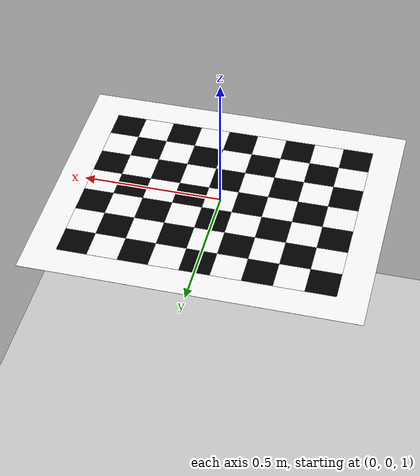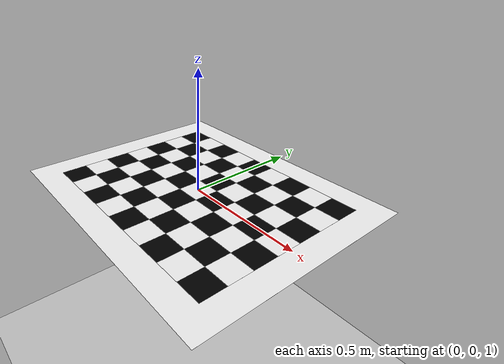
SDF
<sdf version="1.6">
 <world name="default">
  <light name="sun" type="directional">
   <pose>0 0 10 0 -0 0</pose>
   <diffuse>0.8 0.8 0.8 1</diffuse>
   <specular>0.2 0.2 0.2 1</specular>
   <attenuation>
    <range>1000</range>
    <constant>0.9</constant>
    <linear>0.01</linear>
    <quadratic>0.001</quadratic>
   </attenuation>
   <direction>-0.5 0.1 -0.9</direction>
  </light>
  <model name="ground_plane">
   <static>1</static>
   <link name="link">
    <collision name="collision">
     <geometry><plane><normal>0 0 1</normal><size>100 100</size></plane></geometry>
     <surface>
      <contact><collide_bitmask>65535</collide_bitmask></contact>
      <friction><ode><mu>100</mu><mu2>50</mu2></ode></friction>
     </surface>
    </collision>
    <visual name="visual">
     <cast_shadows>0</cast_shadows>
     <geometry><plane><normal>0 0 1</normal><size>100 100</size></plane></geometry>
     <material>
      <script><uri>file://media/materials/scripts/gazebo.material</uri><name>Gazebo/Grey</name></script>
     </material>
    </visual>
   </link>
  </model>
  <gravity>0 0 -9.8</gravity>
  <magnetic_field>6e-06 2.3e-05 -4.2e-05</magnetic_field>
  <atmosphere type="adiabatic"/>
  <physics name="default_physics" default="0" type="ode">
   <max_step_size>0.001</max_step_size>
   <real_time_factor>1</real_time_factor>
   <real_time_update_rate>1000</real_time_update_rate>
  </physics>
  <scene><ambient>0.4 0.4 0.4 1</ambient><background>0.7 0.7 0.7 1</background><shadows>1</shadows></scene>
  <spherical_coordinates>
   <surface_model>EARTH_WGS84</surface_model>
   <latitude_deg>0</latitude_deg>
   <longitude_deg>0</longitude_deg>
   <elevation>0</elevation>
   <heading_deg>0</heading_deg>
  </spherical_coordinates>
  <include><uri>model://checkerboard_9_7_0_108</uri><pose>0 0 1 0 0 0</pose></include>
 </world>
</sdf>

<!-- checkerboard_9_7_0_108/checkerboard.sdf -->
<sdf version="1.4">
  <model name="checkerboard_9_7_0_108">
  <static>true</static>
  <link name="checkerboard_9_7_0_108_body">
      <visual name="checker_0_0">
        <pose>-0.432 -0.324 0 0 0 0</pose>
        <geometry>
          <box>
            <size>0.108 0.108 0.0002</size>
          </box>
        </geometry>
        <material>
          <ambient>0 0 0 1</ambient>
          <diffuse>0 0 0 1</diffuse>
          <specular>0 0 0 1</specular>
          <emissive>0 0 0 1</emissive>
        </material>
      </visual>
      <visual name="checker_0_1">
        <pose>-0.432 -0.216 0 0 0 0</pose>
        <geometry>
          <box>
            <size>0.108 0.108 0.0002</size>
          </box>
        </geometry>
        <material>
          <ambient>1 1 1 1</ambient>
          <diffuse>1 1 1 1</diffuse>
          <specular>1 1 1 1</specular>
          <emissive>1 1 1 1</emissive>
        </material>
      </visual>
      <visual name="checker_0_2">
        <pose>-0.432 -0.10799999999999998 0 0 0 0</pose>
        <geometry>
          <box>
            <size>0.108 0.108 0.0002</size>
          </box>
        </geometry>
        <material>
          <ambient>0 0 0 1</ambient>
          <diffuse>0 0 0 1</diffuse>
          <specular>0 0 0 1</specular>
          <emissive>0 0 0 1</emissive>
        </material>
      </visual>
      <visual name="checker_0_3">
        <pose>-0.432 0.0 0 0 0 0</pose>
        <geometry>
          <box>
            <size>0.108 0.108 0.0002</size>
          </box>
        </geometry>
        <material>
          <ambient>1 1 1 1</ambient>
          <diffuse>1 1 1 1</diffuse>
          <specular>1 1 1 1</specular>
          <emissive>1 1 1 1</emissive>
        </material>
      </visual>
      <visual name="checker_0_4">
        <pose>-0.432 0.10799999999999998 0 0 0 0</pose>
        <geometry>
          <box>
            <size>0.108 0.108 0.0002</size>
          </box>
        </geometry>
        <material>
          <ambient>0 0 0 1</ambient>
          <diffuse>0 0 0 1</diffuse>
          <specular>0 0 0 1</specular>
          <emissive>0 0 0 1</emissive>
        </material>
      </visual>
      <visual name="checker_0_5">
        <pose>-0.432 0.21600000000000008 0 0 0 0</pose>
        <geometry>
          <box>
            <size>0.108 0.108 0.0002</size>
          </box>
        </geometry>
        <material>
          <ambient>1 1 1 1</ambient>
          <diffuse>1 1 1 1</diffuse>
          <specular>1 1 1 1</specular>
          <emissive>1 1 1 1</emissive>
        </material>
      </visual>
      <visual name="checker_0_6">
        <pose>-0.432 0.32400000000000007 0 0 0 0</pose>
        <geometry>
          <box>
            <size>0.108 0.108 0.0002</size>
          </box>
        </geometry>
        <material>
          <ambient>0 0 0 1</ambient>
          <diffuse>0 0 0 1</diffuse>
          <specular>0 0 0 1</specular>
          <emissive>0 0 0 1</emissive>
        </material>
      </visual>
      <visual name="checker_1_0">
        <pose>-0.32399999999999995 -0.324 0 0 0 0</pose>
        <geometry>
          <box>
            <size>0.108 0.108 0.0002</size>
          </box>
        </geometry>
        <material>
          <ambient>1 1 1 1</ambient>
          <diffuse>1 1 1 1</diffuse>
          <specular>1 1 1 1</specular>
          <emissive>1 1 1 1</emissive>
        </material>
      </visual>
      <visual name="checker_1_1">
        <pose>-0.32399999999999995 -0.216 0 0 0 0</pose>
        <geometry>
          <box>
            <size>0.108 0.108 0.0002</size>
          </box>
        </geometry>
        <material>
          <ambient>0 0 0 1</ambient>
          <diffuse>0 0 0 1</diffuse>
          <specular>0 0 0 1</specular>
          <emissive>0 0 0 1</emissive>
        </material>
      </visual>
      <visual name="checker_1_2">
        <pose>-0.32399999999999995 -0.10799999999999998 0 0 0 0</pose>
        <geometry>
          <box>
            <size>0.108 0.108 0.0002</size>
          </box>
        </geometry>
        <material>
          <ambient>1 1 1 1</ambient>
          <diffuse>1 1 1 1</diffuse>
          <specular>1 1 1 1</specular>
          <emissive>1 1 1 1</emissive>
        </material>
      </visual>
      <visual name="checker_1_3">
        <pose>-0.32399999999999995 0.0 0 0 0 0</pose>
        <geometry>
          <box>
            <size>0.108 0.108 0.0002</size>
          </box>
        </geometry>
        <material>
          <ambient>0 0 0 1</ambient>
          <diffuse>0 0 0 1</diffuse>
          <specular>0 0 0 1</specular>
          <emissive>0 0 0 1</emissive>
        </material>
      </visual>
      <visual name="checker_1_4">
        <pose>-0.32399999999999995 0.10799999999999998 0 0 0 0</pose>
        <geometry>
          <box>
            <size>0.108 0.108 0.0002</size>
          </box>
        </geometry>
        <material>
          <ambient>1 1 1 1</ambient>
          <diffuse>1 1 1 1</diffuse>
          <specular>1 1 1 1</specular>
          <emissive>1 1 1 1</emissive>
        </material>
      </visual>
      <visual name="checker_1_5">
        <pose>-0.32399999999999995 0.21600000000000008 0 0 0 0</pose>
        <geometry>
          <box>
            <size>0.108 0.108 0.0002</size>
          </box>
        </geometry>
        <material>
          <ambient>0 0 0 1</ambient>
          <diffuse>0 0 0 1</diffuse>
          <specular>0 0 0 1</specular>
          <emissive>0 0 0 1</emissive>
        </material>
      </visual>
      <visual name="checker_1_6">
        <pose>-0.32399999999999995 0.32400000000000007 0 0 0 0</pose>
        <geometry>
          <box>
            <size>0.108 0.108 0.0002</size>
          </box>
        </geometry>
        <material>
          <ambient>1 1 1 1</ambient>
          <diffuse>1 1 1 1</diffuse>
          <specular>1 1 1 1</specular>
          <emissive>1 1 1 1</emissive>
        </material>
      </visual>
      <visual name="checker_2_0">
        <pose>-0.21599999999999997 -0.324 0 0 0 0</pose>
        <geometry>
          <box>
            <size>0.108 0.108 0.0002</size>
          </box>
        </geometry>
        <material>
          <ambient>0 0 0 1</ambient>
          <diffuse>0 0 0 1</diffuse>
          <specular>0 0 0 1</specular>
          <emissive>0 0 0 1</emissive>
        </material>
      </visual>
      <visual name="checker_2_1">
        <pose>-0.21599999999999997 -0.216 0 0 0 0</pose>
        <geometry>
          <box>
            <size>0.108 0.108 0.0002</size>
          </box>
        </geometry>
        <material>
          <ambient>1 1 1 1</ambient>
          <diffuse>1 1 1 1</diffuse>
          <specular>1 1 1 1</specular>
          <emissive>1 1 1 1</emissive>
        </material>
      </visual>
      <visual name="checker_2_2">
        <pose>-0.21599999999999997 -0.10799999999999998 0 0 0 0</pose>
        <geometry>
          <box>
            <size>0.108 0.108 0.0002</size>
          </box>
        </geometry>
        <material>
          <ambient>0 0 0 1</ambient>
          <diffuse>0 0 0 1</diffuse>
          <specular>0 0 0 1</specular>
          <emissive>0 0 0 1</emissive>
        </material>
      </visual>
      <visual name="checker_2_3">
        <pose>-0.21599999999999997 0.0 0 0 0 0</pose>
        <geometry>
          <box>
            <size>0.108 0.108 0.0002</size>
          </box>
        </geometry>
        <material>
          <ambient>1 1 1 1</ambient>
          <diffuse>1 1 1 1</diffuse>
          <specular>1 1 1 1</specular>
          <emissive>1 1 1 1</emissive>
        </material>
      </visual>
      <visual name="checker_2_4">
        <pose>-0.21599999999999997 0.10799999999999998 0 0 0 0</pose>
        <geometry>
          <box>
            <size>0.108 0.108 0.0002</size>
          </box>
        </geometry>
        <material>
          <ambient>0 0 0 1</ambient>
          <diffuse>0 0 0 1</diffuse>
          <specular>0 0 0 1</specular>
          <emissive>0 0 0 1</emissive>
        </material>
      </visual>
      <visual name="checker_2_5">
        <pose>-0.21599999999999997 0.21600000000000008 0 0 0 0</pose>
        <geometry>
          <box>
            <size>0.108 0.108 0.0002</size>
          </box>
        </geometry>
        <material>
          <ambient>1 1 1 1</ambient>
          <diffuse>1 1 1 1</diffuse>
          <specular>1 1 1 1</specular>
          <emissive>1 1 1 1</emissive>
        </material>
      </visual>
      <visual name="checker_2_6">
        <pose>-0.21599999999999997 0.32400000000000007 0 0 0 0</pose>
        <geometry>
          <box>
            <size>0.108 0.108 0.0002</size>
          </box>
        </geometry>
        <material>
          <ambient>0 0 0 1</ambient>
          <diffuse>0 0 0 1</diffuse>
          <specular>0 0 0 1</specular>
          <emissive>0 0 0 1</emissive>
        </material>
      </visual>
      <visual name="checker_3_0">
        <pose>-0.10799999999999998 -0.324 0 0 0 0</pose>
        <geometry>
          <box>
            <size>0.108 0.108 0.0002</size>
          </box>
        </geometry>
        <material>
          <ambient>1 1 1 1</ambient>
          <diffuse>1 1 1 1</diffuse>
          <specular>1 1 1 1</specular>
          <emissive>1 1 1 1</emissive>
        </material>
      </visual>
      <visual name="checker_3_1">
        <pose>-0.10799999999999998 -0.216 0 0 0 0</pose>
        <geometry>
          <box>
            <size>0.108 0.108 0.0002</size>
          </box>
        </geometry>
        <material>
          <ambient>0 0 0 1</ambient>
          <diffuse>0 0 0 1</diffuse>
          <specular>0 0 0 1</specular>
          <emissive>0 0 0 1</emissive>
        </material>
      </visual>
      <visual name="checker_3_2">
        <pose>-0.10799999999999998 -0.10799999999999998 0 0 0 0</pose>
        <geometry>
          <box>
            <size>0.108 0.108 0.0002</size>
          </box>
        </geometry>
        <material>
          <ambient>1 1 1 1</ambient>
          <diffuse>1 1 1 1</diffuse>
          <specular>1 1 1 1</specular>
          <emissive>1 1 1 1</emissive>
        </material>
      </visual>
      <visual name="checker_3_3">
        <pose>-0.10799999999999998 0.0 0 0 0 0</pose>
        <geometry>
          <box>
            <size>0.108 0.108 0.0002</size>
          </box>
        </geometry>
        <material>
          <ambient>0 0 0 1</ambient>
          <diffuse>0 0 0 1</diffuse>
          <specular>0 0 0 1</specular>
          <emissive>0 0 0 1</emissive>
        </material>
      </visual>
      <visual name="checker_3_4">
        <pose>-0.10799999999999998 0.10799999999999998 0 0 0 0</pose>
        <geometry>
          <box>
            <size>0.108 0.108 0.0002</size>
          </box>
        </geometry>
        <material>
          <ambient>1 1 1 1</ambient>
          <diffuse>1 1 1 1</diffuse>
          <specular>1 1 1 1</specular>
          <emissive>1 1 1 1</emissive>
        </material>
      </visual>
      <visual name="checker_3_5">
        <pose>-0.10799999999999998 0.21600000000000008 0 0 0 0</pose>
        <geometry>
          <box>
            <size>0.108 0.108 0.0002</size>
          </box>
        </geometry>
        <material>
          <ambient>0 0 0 1</ambient>
          <diffuse>0 0 0 1</diffuse>
          <specular>0 0 0 1</specular>
          <emissive>0 0 0 1</emissive>
        </material>
      </visual>
      <visual name="checker_3_6">
        <pose>-0.10799999999999998 0.32400000000000007 0 0 0 0</pose>
        <geometry>
          <box>
            <size>0.108 0.108 0.0002</size>
          </box>
        </geometry>
        <material>
          <ambient>1 1 1 1</ambient>
          <diffuse>1 1 1 1</diffuse>
          <specular>1 1 1 1</specular>
          <emissive>1 1 1 1</emissive>
        </material>
      </visual>
      <visual name="checker_4_0">
        <pose>0.0 -0.324 0 0 0 0</pose>
        <geometry>
          <box>
            <size>0.108 0.108 0.0002</size>
          </box>
        </geometry>
        <material>
          <ambient>0 0 0 1</ambient>
          <diffuse>0 0 0 1</diffuse>
          <specular>0 0 0 1</specular>
          <emissive>0 0 0 1</emissive>
        </material>
      </visual>
      <visual name="checker_4_1">
        <pose>0.0 -0.216 0 0 0 0</pose>
        <geometry>
          <box>
            <size>0.108 0.108 0.0002</size>
          </box>
        </geometry>
        <material>
          <ambient>1 1 1 1</ambient>
          <diffuse>1 1 1 1</diffuse>
          <specular>1 1 1 1</specular>
          <emissive>1 1 1 1</emissive>
        </material>
      </visual>
      <visual name="checker_4_2">
        <pose>0.0 -0.10799999999999998 0 0 0 0</pose>
        <geometry>
          <box>
            <size>0.108 0.108 0.0002</size>
          </box>
        </geometry>
        <material>
          <ambient>0 0 0 1</ambient>
          <diffuse>0 0 0 1</diffuse>
          <specular>0 0 0 1</specular>
          <emissive>0 0 0 1</emissive>
        </material>
      </visual>
      <visual name="checker_4_3">
        <pose>0.0 0.0 0 0 0 0</pose>
        <geometry>
          <box>
            <size>0.108 0.108 0.0002</size>
          </box>
        </geometry>
        <material>
          <ambient>1 1 1 1</ambient>
          <diffuse>1 1 1 1</diffuse>
          <specular>1 1 1 1</specular>
          <emissive>1 1 1 1</emissive>
        </material>
      </visual>
      <visual name="checker_4_4">
        <pose>0.0 0.10799999999999998 0 0 0 0</pose>
        <geometry>
          <box>
            <size>0.108 0.108 0.0002</size>
          </box>
        </geometry>
        <material>
          <ambient>0 0 0 1</ambient>
          <diffuse>0 0 0 1</diffuse>
          <specular>0 0 0 1</specular>
          <emissive>0 0 0 1</emissive>
        </material>
      </visual>
      <visual name="checker_4_5">
        <pose>0.0 0.21600000000000008 0 0 0 0</pose>
        <geometry>
          <box>
            <size>0.108 0.108 0.0002</size>
          </box>
        </geometry>
        <material>
          <ambient>1 1 1 1</ambient>
          <diffuse>1 1 1 1</diffuse>
          <specular>1 1 1 1</specular>
          <emissive>1 1 1 1</emissive>
        </material>
      </visual>
      <visual name="checker_4_6">
        <pose>0.0 0.32400000000000007 0 0 0 0</pose>
        <geometry>
          <box>
            <size>0.108 0.108 0.0002</size>
          </box>
        </geometry>
        <material>
          <ambient>0 0 0 1</ambient>
          <diffuse>0 0 0 1</diffuse>
          <specular>0 0 0 1</specular>
          <emissive>0 0 0 1</emissive>
        </material>
      </visual>
      <visual name="checker_5_0">
        <pose>0.1080000000000001 -0.324 0 0 0 0</pose>
        <geometry>
          <box>
            <size>0.108 0.108 0.0002</size>
          </box>
        </geometry>
        <material>
          <ambient>1 1 1 1</ambient>
          <diffuse>1 1 1 1</diffuse>
          <specular>1 1 1 1</specular>
          <emissive>1 1 1 1</emissive>
        </material>
      </visual>
      <visual name="checker_5_1">
        <pose>0.1080000000000001 -0.216 0 0 0 0</pose>
        <geometry>
          <box>
            <size>0.108 0.108 0.0002</size>
          </box>
        </geometry>
        <material>
          <ambient>0 0 0 1</ambient>
          <diffuse>0 0 0 1</diffuse>
          <specular>0 0 0 1</specular>
          <emissive>0 0 0 1</emissive>
        </material>
      </visual>
      <visual name="checker_5_2">
        <pose>0.1080000000000001 -0.10799999999999998 0 0 0 0</pose>
        <geometry>
          <box>
            <size>0.108 0.108 0.0002</size>
          </box>
        </geometry>
        <material>
          <ambient>1 1 1 1</ambient>
          <diffuse>1 1 1 1</diffuse>
          <specular>1 1 1 1</specular>
          <emissive>1 1 1 1</emissive>
        </material>
      </visual>
      <visual name="checker_5_3">
        <pose>0.1080000000000001 0.0 0 0 0 0</pose>
        <geometry>
          <box>
            <size>0.108 0.108 0.0002</size>
          </box>
        </geometry>
        <material>
          <ambient>0 0 0 1</ambient>
          <diffuse>0 0 0 1</diffuse>
          <specular>0 0 0 1</specular>
          <emissive>0 0 0 1</emissive>
        </material>
      </visual>
      <visual name="checker_5_4">
        <pose>0.1080000000000001 0.10799999999999998 0 0 0 0</pose>
        <geometry>
          <box>
            <size>0.108 0.108 0.0002</size>
          </box>
        </geometry>
        <material>
          <ambient>1 1 1 1</ambient>
          <diffuse>1 1 1 1</diffuse>
          <specular>1 1 1 1</specular>
          <emissive>1 1 1 1</emissive>
        </material>
      </visual>
      <visual name="checker_5_5">
        <pose>0.1080000000000001 0.21600000000000008 0 0 0 0</pose>
        <geometry>
          <box>
            <size>0.108 0.108 0.0002</size>
          </box>
        </geometry>
        <material>
          <ambient>0 0 0 1</ambient>
          <diffuse>0 0 0 1</diffuse>
          <specular>0 0 0 1</specular>
          <emissive>0 0 0 1</emissive>
        </material>
      </visual>
      <visual name="checker_5_6">
        <pose>0.1080000000000001 0.32400000000000007 0 0 0 0</pose>
        <geometry>
          <box>
            <size>0.108 0.108 0.0002</size>
          </box>
        </geometry>
        <material>
          <ambient>1 1 1 1</ambient>
          <diffuse>1 1 1 1</diffuse>
          <specular>1 1 1 1</specular>
          <emissive>1 1 1 1</emissive>
        </material>
      </visual>
      <visual name="checker_6_0">
        <pose>0.21600000000000008 -0.324 0 0 0 0</pose>
        <geometry>
          <box>
            <size>0.108 0.108 0.0002</size>
          </box>
        </geometry>
        <material>
          <ambient>0 0 0 1</ambient>
          <diffuse>0 0 0 1</diffuse>
          <specular>0 0 0 1</specular>
          <emissive>0 0 0 1</emissive>
        </material>
      </visual>
      <visual name="checker_6_1">
        <pose>0.21600000000000008 -0.216 0 0 0 0</pose>
        <geometry>
          <box>
            <size>0.108 0.108 0.0002</size>
          </box>
        </geometry>
        <material>
          <ambient>1 1 1 1</ambient>
          <diffuse>1 1 1 1</diffuse>
          <specular>1 1 1 1</specular>
          <emissive>1 1 1 1</emissive>
        </material>
      </visual>
      <visual name="checker_6_2">
        <pose>0.21600000000000008 -0.10799999999999998 0 0 0 0</pose>
        <geometry>
          <box>
            <size>0.108 0.108 0.0002</size>
          </box>
        </geometry>
        <material>
          <ambient>0 0 0 1</ambient>
          <diffuse>0 0 0 1</diffuse>
          <specular>0 0 0 1</specular>
          <emissive>0 0 0 1</emissive>
        </material>
      </visual>
      <visual name="checker_6_3">
        <pose>0.21600000000000008 0.0 0 0 0 0</pose>
        <geometry>
          <box>
            <size>0.108 0.108 0.0002</size>
          </box>
        </geometry>
        <material>
          <ambient>1 1 1 1</ambient>
          <diffuse>1 1 1 1</diffuse>
          <specular>1 1 1 1</specular>
          <emissive>1 1 1 1</emissive>
        </material>
      </visual>
      <visual name="checker_6_4">
        <pose>0.21600000000000008 0.10799999999999998 0 0 0 0</pose>
        <geometry>
          <box>
            <size>0.108 0.108 0.0002</size>
          </box>
        </geometry>
        <material>
          <ambient>0 0 0 1</ambient>
          <diffuse>0 0 0 1</diffuse>
          <specular>0 0 0 1</specular>
          <emissive>0 0 0 1</emissive>
        </material>
      </visual>
      <visual name="checker_6_5">
        <pose>0.21600000000000008 0.21600000000000008 0 0 0 0</pose>
        <geometry>
          <box>
            <size>0.108 0.108 0.0002</size>
          </box>
        </geometry>
        <material>
          <ambient>1 1 1 1</ambient>
          <diffuse>1 1 1 1</diffuse>
          <specular>1 1 1 1</specular>
          <emissive>1 1 1 1</emissive>
        </material>
      </visual>
      <visual name="checker_6_6">
        <pose>0.21600000000000008 0.32400000000000007 0 0 0 0</pose>
        <geometry>
          <box>
            <size>0.108 0.108 0.0002</size>
          </box>
        </geometry>
        <material>
          <ambient>0 0 0 1</ambient>
          <diffuse>0 0 0 1</diffuse>
          <specular>0 0 0 1</specular>
          <emissive>0 0 0 1</emissive>
        </material>
      </visual>
      <visual name="checker_7_0">
        <pose>0.32400000000000007 -0.324 0 0 0 0</pose>
        <geometry>
          <box>
            <size>0.108 0.108 0.0002</size>
          </box>
        </geometry>
        <material>
          <ambient>1 1 1 1</ambient>
          <diffuse>1 1 1 1</diffuse>
          <specular>1 1 1 1</specular>
          <emissive>1 1 1 1</emissive>
        </material>
      </visual>
      <visual name="checker_7_1">
        <pose>0.32400000000000007 -0.216 0 0 0 0</pose>
        <geometry>
          <box>
            <size>0.108 0.108 0.0002</size>
          </box>
        </geometry>
        <material>
          <ambient>0 0 0 1</ambient>
          <diffuse>0 0 0 1</diffuse>
          <specular>0 0 0 1</specular>
          <emissive>0 0 0 1</emissive>
        </material>
      </visual>
      <visual name="checker_7_2">
        <pose>0.32400000000000007 -0.10799999999999998 0 0 0 0</pose>
        <geometry>
          <box>
            <size>0.108 0.108 0.0002</size>
          </box>
        </geometry>
        <material>
          <ambient>1 1 1 1</ambient>
          <diffuse>1 1 1 1</diffuse>
          <specular>1 1 1 1</specular>
          <emissive>1 1 1 1</emissive>
        </material>
      </visual>
      <visual name="checker_7_3">
        <pose>0.32400000000000007 0.0 0 0 0 0</pose>
        <geometry>
          <box>
            <size>0.108 0.108 0.0002</size>
          </box>
        </geometry>
        <material>
          <ambient>0 0 0 1</ambient>
          <diffuse>0 0 0 1</diffuse>
          <specular>0 0 0 1</specular>
          <emissive>0 0 0 1</emissive>
        </material>
      </visual>
      <visual name="checker_7_4">
        <pose>0.32400000000000007 0.10799999999999998 0 0 0 0</pose>
        <geometry>
          <box>
            <size>0.108 0.108 0.0002</size>
          </box>
        </geometry>
        <material>
          <ambient>1 1 1 1</ambient>
          <diffuse>1 1 1 1</diffuse>
          <specular>1 1 1 1</specular>
          <emissive>1 1 1 1</emissive>
        </material>
      </visual>
      <visual name="checker_7_5">
        <pose>0.32400000000000007 0.21600000000000008 0 0 0 0</pose>
        <geometry>
          <box>
            <size>0.108 0.108 0.0002</size>
          </box>
        </geometry>
        <material>
          <ambient>0 0 0 1</ambient>
          <diffuse>0 0 0 1</diffuse>
          <specular>0 0 0 1</specular>
          <emissive>0 0 0 1</emissive>
        </material>
      </visual>
      <visual name="checker_7_6">
        <pose>0.32400000000000007 0.32400000000000007 0 0 0 0</pose>
        <geometry>
          <box>
            <size>0.108 0.108 0.0002</size>
          </box>
        </geometry>
        <material>
          <ambient>1 1 1 1</ambient>
          <diffuse>1 1 1 1</diffuse>
          <specular>1 1 1 1</specular>
          <emissive>1 1 1 1</emissive>
        </material>
      </visual>
      <visual name="checker_8_0">
        <pose>0.43200000000000005 -0.324 0 0 0 0</pose>
        <geometry>
          <box>
            <size>0.108 0.108 0.0002</size>
          </box>
        </geometry>
        <material>
          <ambient>0 0 0 1</ambient>
          <diffuse>0 0 0 1</diffuse>
          <specular>0 0 0 1</specular>
          <emissive>0 0 0 1</emissive>
        </material>
      </visual>
      <visual name="checker_8_1">
        <pose>0.43200000000000005 -0.216 0 0 0 0</pose>
        <geometry>
          <box>
            <size>0.108 0.108 0.0002</size>
          </box>
        </geometry>
        <material>
          <ambient>1 1 1 1</ambient>
          <diffuse>1 1 1 1</diffuse>
          <specular>1 1 1 1</specular>
          <emissive>1 1 1 1</emissive>
        </material>
      </visual>
      <visual name="checker_8_2">
        <pose>0.43200000000000005 -0.10799999999999998 0 0 0 0</pose>
        <geometry>
          <box>
            <size>0.108 0.108 0.0002</size>
          </box>
        </geometry>
        <material>
          <ambient>0 0 0 1</ambient>
          <diffuse>0 0 0 1</diffuse>
          <specular>0 0 0 1</specular>
          <emissive>0 0 0 1</emissive>
        </material>
      </visual>
      <visual name="checker_8_3">
        <pose>0.43200000000000005 0.0 0 0 0 0</pose>
        <geometry>
          <box>
            <size>0.108 0.108 0.0002</size>
          </box>
        </geometry>
        <material>
          <ambient>1 1 1 1</ambient>
          <diffuse>1 1 1 1</diffuse>
          <specular>1 1 1 1</specular>
          <emissive>1 1 1 1</emissive>
        </material>
      </visual>
      <visual name="checker_8_4">
        <pose>0.43200000000000005 0.10799999999999998 0 0 0 0</pose>
        <geometry>
          <box>
            <size>0.108 0.108 0.0002</size>
          </box>
        </geometry>
        <material>
          <ambient>0 0 0 1</ambient>
          <diffuse>0 0 0 1</diffuse>
          <specular>0 0 0 1</specular>
          <emissive>0 0 0 1</emissive>
        </material>
      </visual>
      <visual name="checker_8_5">
        <pose>0.43200000000000005 0.21600000000000008 0 0 0 0</pose>
        <geometry>
          <box>
            <size>0.108 0.108 0.0002</size>
          </box>
        </geometry>
        <material>
          <ambient>1 1 1 1</ambient>
          <diffuse>1 1 1 1</diffuse>
          <specular>1 1 1 1</specular>
          <emissive>1 1 1 1</emissive>
        </material>
      </visual>
      <visual name="checker_8_6">
        <pose>0.43200000000000005 0.32400000000000007 0 0 0 0</pose>
        <geometry>
          <box>
            <size>0.108 0.108 0.0002</size>
          </box>
        </geometry>
        <material>
          <ambient>0 0 0 1</ambient>
          <diffuse>0 0 0 1</diffuse>
          <specular>0 0 0 1</specular>
          <emissive>0 0 0 1</emissive>
        </material>
      </visual>
      <visual name="checker_backdrop">
        <pose>0 0 0 0 0 0</pose>
        <geometry>
          <box>
            <size>1.188 0.972 0.0001</size>
          </box>
        </geometry>
        <material>
          <ambient>1 1 1 1</ambient>
          <diffuse>1 1 1 1</diffuse>
          <specular>1 1 1 1</specular>
          <emissive>1 1 1 1</emissive>
        </material>
      </visual>
    </link>
  </model>
</sdf>
